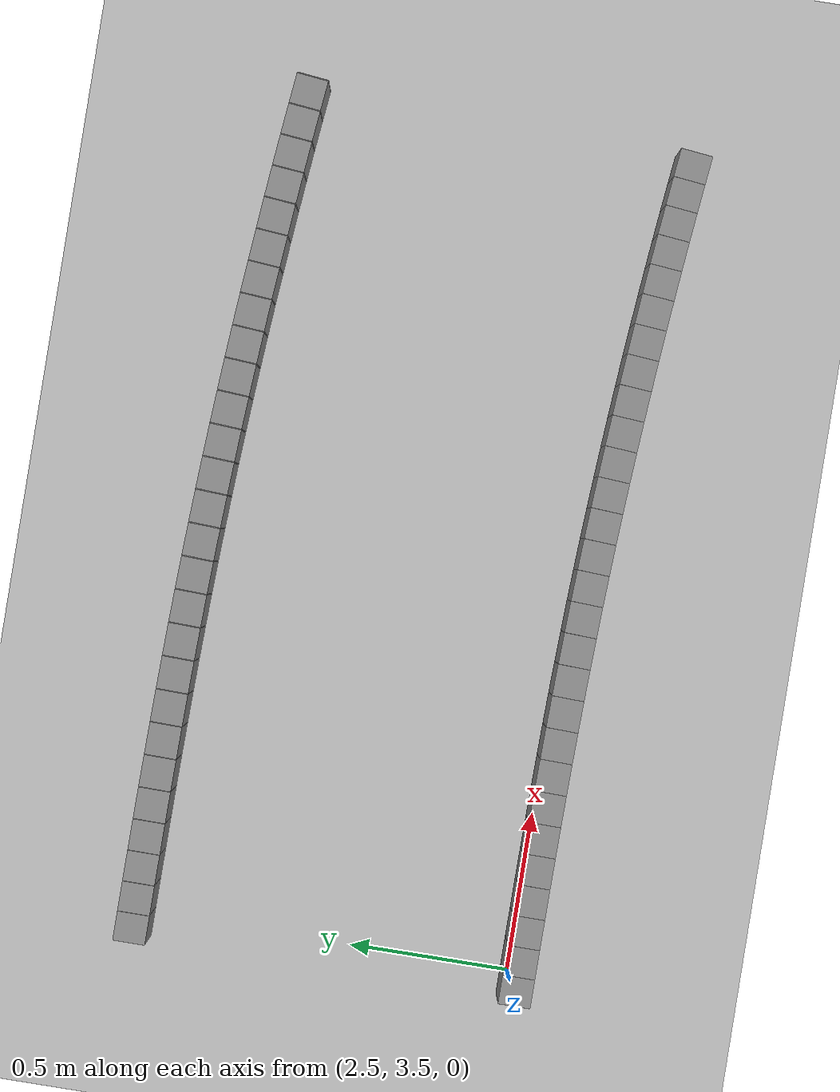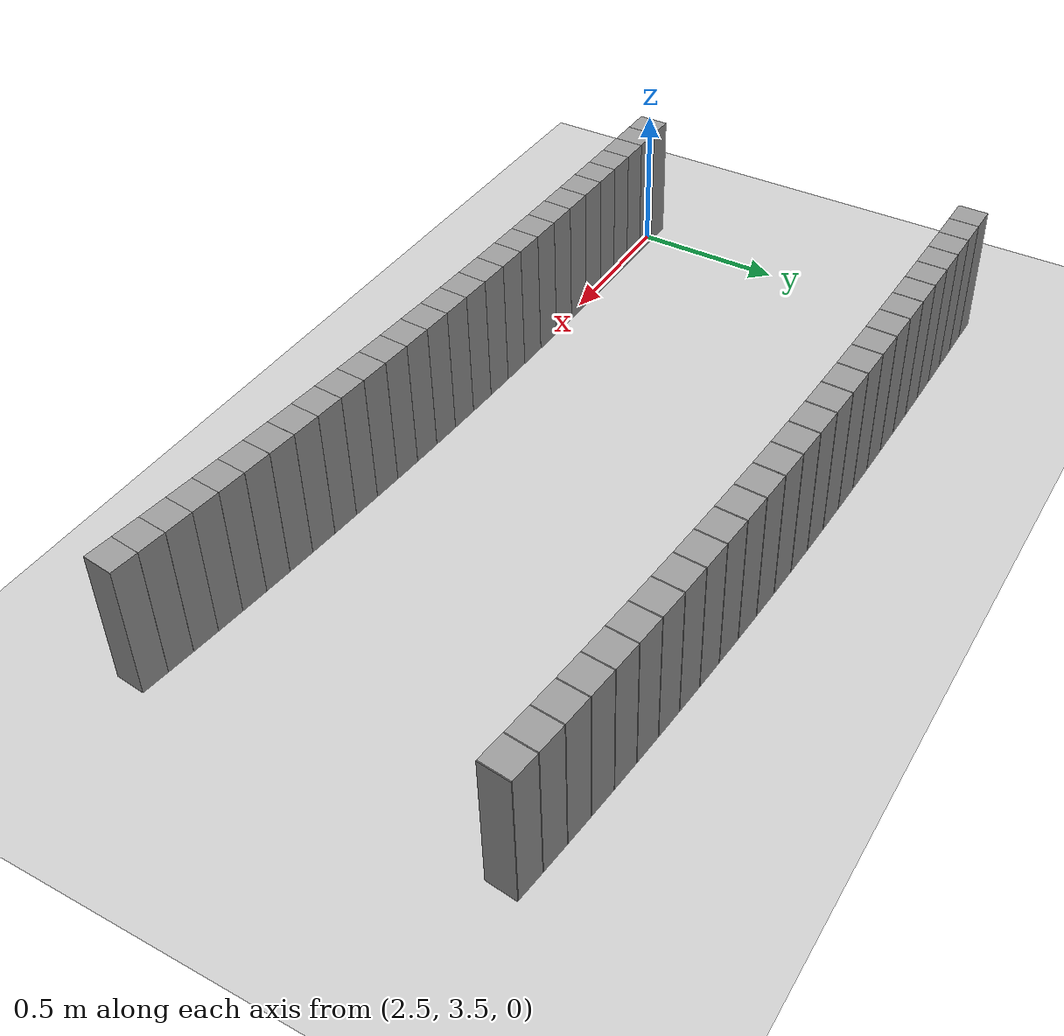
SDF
<sdf version="1.6">
 <world name="default">
  <include><uri>model://ground_plane</uri></include>
  <include><uri>model://sun</uri></include>
  <model name="wall_837_outward">
   <static>true</static>
   <link name="link">
    <collision name="collision">
     <geometry><box><size>0.08978405667883999 0.1 0.45</size></box></geometry>
    </collision>
    <visual name="visual">
     <geometry><box><size>0.08978405667883999 0.1 0.45</size></box></geometry>
     <material>
      <script><uri>file://media/materials/scripts/gazebo.material</uri><name>Gazebo/Gray</name></script>
     </material>
    </visual>
   </link>
   <pose>5.060074498899372 3.3413379117746698 0.225 0 0 3.0294439697738356</pose>
  </model>
  <model name="wall_838_outward">
   <static>true</static>
   <link name="link">
    <collision name="collision">
     <geometry><box><size>0.09111415538172778 0.1 0.45</size></box></geometry>
    </collision>
    <visual name="visual">
     <geometry><box><size>0.09111415538172778 0.1 0.45</size></box></geometry>
     <material>
      <script><uri>file://media/materials/scripts/gazebo.material</uri><name>Gazebo/Gray</name></script>
     </material>
    </visual>
   </link>
   <pose>4.9701692608893175 3.3512394400097394 0.225 0 0 3.0343237056738137</pose>
  </model>
  <model name="wall_839_outward">
   <static>true</static>
   <link name="link">
    <collision name="collision">
     <geometry><box><size>0.09233453559564336 0.1 0.45</size></box></geometry>
    </collision>
    <visual name="visual">
     <geometry><box><size>0.09233453559564336 0.1 0.45</size></box></geometry>
     <material>
      <script><uri>file://media/materials/scripts/gazebo.material</uri><name>Gazebo/Gray</name></script>
     </material>
    </visual>
   </link>
   <pose>4.878949384923868 3.3608437745766953 0.225 0 0 3.039027805335676</pose>
  </model>
  <model name="wall_840_outward">
   <static>true</static>
   <link name="link">
    <collision name="collision">
     <geometry><box><size>0.09342747025694538 0.1 0.45</size></box></geometry>
    </collision>
    <visual name="visual">
     <geometry><box><size>0.09342747025694538 0.1 0.45</size></box></geometry>
     <material>
      <script><uri>file://media/materials/scripts/gazebo.material</uri><name>Gazebo/Gray</name></script>
     </material>
    </visual>
   </link>
   <pose>4.786535166343376 3.3701415210207166 0.225 0 0 3.0435865578661128</pose>
  </model>
  <model name="wall_841_outward">
   <static>true</static>
   <link name="link">
    <collision name="collision">
     <geometry><box><size>0.09437492388730875 0.1 0.45</size></box></geometry>
    </collision>
    <visual name="visual">
     <geometry><box><size>0.09437492388730875 0.1 0.45</size></box></geometry>
     <material>
      <script><uri>file://media/materials/scripts/gazebo.material</uri><name>Gazebo/Gray</name></script>
     </material>
    </visual>
   </link>
   <pose>4.693064501812158 3.379120722409313 0.225 0 0 3.048035306997692</pose>
  </model>
  <model name="wall_842_outward">
   <static>true</static>
   <link name="link">
    <collision name="collision">
     <geometry><box><size>0.09516934785753037 0.1 0.45</size></box></geometry>
    </collision>
    <visual name="visual">
     <geometry><box><size>0.09516934785753037 0.1 0.45</size></box></geometry>
     <material>
      <script><uri>file://media/materials/scripts/gazebo.material</uri><name>Gazebo/Gray</name></script>
     </material>
    </visual>
   </link>
   <pose>4.598687802341193 3.387766715320439 0.225 0 0 3.052418599450653</pose>
  </model>
  <model name="wall_843_outward">
   <static>true</static>
   <link name="link">
    <collision name="collision">
     <geometry><box><size>0.09580797537173329 0.1 0.45</size></box></geometry>
    </collision>
    <visual name="visual">
     <geometry><box><size>0.09580797537173329 0.1 0.45</size></box></geometry>
     <material>
      <script><uri>file://media/materials/scripts/gazebo.material</uri><name>Gazebo/Gray</name></script>
     </material>
    </visual>
   </link>
   <pose>4.5035604190603395 3.3960626287252182 0.225 0 0 3.0567753603623444</pose>
  </model>
  <model name="wall_844_outward">
   <static>true</static>
   <link name="link">
    <collision name="collision">
     <geometry><box><size>0.09630136565747789 0.1 0.45</size></box></geometry>
    </collision>
    <visual name="visual">
     <geometry><box><size>0.09630136565747789 0.1 0.45</size></box></geometry>
     <material>
      <script><uri>file://media/materials/scripts/gazebo.material</uri><name>Gazebo/Gray</name></script>
     </material>
    </visual>
   </link>
   <pose>4.407833619872571 3.403989499196128 0.225 0 0 3.061161226955232</pose>
  </model>
  <model name="wall_845_outward">
   <static>true</static>
   <link name="link">
    <collision name="collision">
     <geometry><box><size>0.09666911529735084 0.1 0.45</size></box></geometry>
    </collision>
    <visual name="visual">
     <geometry><box><size>0.09666911529735084 0.1 0.45</size></box></geometry>
     <material>
      <script><uri>file://media/materials/scripts/gazebo.material</uri><name>Gazebo/Gray</name></script>
     </material>
    </visual>
   </link>
   <pose>4.311643494005121 3.411527085084715 0.225 0 0 3.065612551889493</pose>
  </model>
  <model name="wall_846_outward">
   <static>true</static>
   <link name="link">
    <collision name="collision">
     <geometry><box><size>0.09693884167619045 0.1 0.45</size></box></geometry>
    </collision>
    <visual name="visual">
     <geometry><box><size>0.09693884167619045 0.1 0.45</size></box></geometry>
     <material>
      <script><uri>file://media/materials/scripts/gazebo.material</uri><name>Gazebo/Gray</name></script>
     </material>
    </visual>
   </link>
   <pose>4.215102511405615 3.418654503946243 0.225 0 0 3.0701779723152307</pose>
  </model>
  <model name="wall_847_outward">
   <static>true</static>
   <link name="link">
    <collision name="collision">
     <geometry><box><size>0.09714953250052986 0.1 0.45</size></box></geometry>
    </collision>
    <visual name="visual">
     <geometry><box><size>0.09714953250052986 0.1 0.45</size></box></geometry>
     <material>
      <script><uri>file://media/materials/scripts/gazebo.material</uri><name>Gazebo/Gray</name></script>
     </material>
    </visual>
   </link>
   <pose>4.118289931845958 3.425351271359341 0.225 0 0 3.0748772702637783</pose>
  </model>
  <model name="wall_848_outward">
   <static>true</static>
   <link name="link">
    <collision name="collision">
     <geometry><box><size>0.09733362774750418 0.1 0.45</size></box></geometry>
    </collision>
    <visual name="visual">
     <geometry><box><size>0.09733362774750418 0.1 0.45</size></box></geometry>
     <material>
      <script><uri>file://media/materials/scripts/gazebo.material</uri><name>Gazebo/Gray</name></script>
     </material>
    </visual>
   </link>
   <pose>4.021249552595787 3.431599020983878 0.225 0 0 3.0797149582719765</pose>
  </model>
  <model name="wall_849_outward">
   <static>true</static>
   <link name="link">
    <collision name="collision">
     <geometry><box><size>0.09752387477174984 0.1 0.45</size></box></geometry>
    </collision>
    <visual name="visual">
     <geometry><box><size>0.09752387477174984 0.1 0.45</size></box></geometry>
     <material>
      <script><uri>file://media/materials/scripts/gazebo.material</uri><name>Gazebo/Gray</name></script>
     </material>
    </visual>
   </link>
   <pose>3.9239929019475763 3.4373823655325344 0.225 0 0 3.0846758455144387</pose>
  </model>
  <model name="wall_850_outward">
   <static>true</static>
   <link name="link">
    <collision name="collision">
     <geometry><box><size>0.09774078524258407 0.1 0.45</size></box></geometry>
    </collision>
    <visual name="visual">
     <geometry><box><size>0.09774078524258407 0.1 0.45</size></box></geometry>
     <material>
      <script><uri>file://media/materials/scripts/gazebo.material</uri><name>Gazebo/Gray</name></script>
     </material>
    </visual>
   </link>
   <pose>3.826505269449698 3.442690166673832 0.225 0 0 3.089719481280956</pose>
  </model>
  <model name="wall_851_outward">
   <static>true</static>
   <link name="link">
    <collision name="collision">
     <geometry><box><size>0.09799163554909575 0.1 0.45</size></box></geometry>
    </collision>
    <visual name="visual">
     <geometry><box><size>0.09799163554909575 0.1 0.45</size></box></geometry>
     <material>
      <script><uri>file://media/materials/scripts/gazebo.material</uri><name>Gazebo/Gray</name></script>
     </material>
    </visual>
   </link>
   <pose>3.728758438257376 3.447516186455678 0.225 0 0 3.0947941470186557</pose>
  </model>
  <model name="wall_852_outward">
   <static>true</static>
   <link name="link">
    <collision name="collision">
     <geometry><box><size>0.09826793805449761 0.1 0.45</size></box></geometry>
    </collision>
    <visual name="visual">
     <geometry><box><size>0.09826793805449761 0.1 0.45</size></box></geometry>
     <material>
      <script><uri>file://media/materials/scripts/gazebo.material</uri><name>Gazebo/Gray</name></script>
     </material>
    </visual>
   </link>
   <pose>3.6307251530484947 3.4518600556350822 0.225 0 0 3.0998217206120304</pose>
  </model>
  <model name="wall_853_outward">
   <static>true</static>
   <link name="link">
    <collision name="collision">
     <geometry><box><size>0.09854313273017384 0.1 0.45</size></box></geometry>
    </collision>
    <visual name="visual">
     <geometry><box><size>0.09854313273017384 0.1 0.45</size></box></geometry>
     <material>
      <script><uri>file://media/materials/scripts/gazebo.material</uri><name>Gazebo/Gray</name></script>
     </material>
    </visual>
   </link>
   <pose>3.5323959484401097 3.45572768918431 0.225 0 0 3.1047302186018637</pose>
  </model>
  <model name="wall_854_outward">
   <static>true</static>
   <link name="link">
    <collision name="collision">
     <geometry><box><size>0.09877771984804665 0.1 0.45</size></box></geometry>
    </collision>
    <visual name="visual">
     <geometry><box><size>0.09877771984804665 0.1 0.45</size></box></geometry>
     <material>
      <script><uri>file://media/materials/scripts/gazebo.material</uri><name>Gazebo/Gray</name></script>
     </material>
    </visual>
   </link>
   <pose>3.4337945283931797 3.4591314819962298 0.225 0 0 3.1094354440333603</pose>
  </model>
  <model name="wall_855_outward">
   <static>true</static>
   <link name="link">
    <collision name="collision">
     <geometry><box><size>0.09891841253824493 0.1 0.45</size></box></geometry>
    </collision>
    <visual name="visual">
     <geometry><box><size>0.09891841253824493 0.1 0.45</size></box></geometry>
     <material>
      <script><uri>file://media/materials/scripts/gazebo.material</uri><name>Gazebo/Gray</name></script>
     </material>
    </visual>
   </link>
   <pose>3.3349909977661145 3.4620902724921994 0.225 0 0 3.113872195194933</pose>
  </model>
  <model name="wall_856_outward">
   <static>true</static>
   <link name="link">
    <collision name="collision">
     <geometry><box><size>0.09891597193592082 0.1 0.45</size></box></geometry>
    </collision>
    <visual name="visual">
     <geometry><box><size>0.09891597193592082 0.1 0.45</size></box></geometry>
     <material>
      <script><uri>file://media/materials/scripts/gazebo.material</uri><name>Gazebo/Gray</name></script>
     </material>
    </visual>
   </link>
   <pose>3.236106583728657 3.4646284059674914 0.225 0 0 3.117989072502176</pose>
  </model>
  <model name="wall_857_outward">
   <static>true</static>
   <link name="link">
    <collision name="collision">
     <geometry><box><size>0.09871757157421233 0.1 0.45</size></box></geometry>
    </collision>
    <visual name="visual">
     <geometry><box><size>0.09871757157421233 0.1 0.45</size></box></geometry>
     <material>
      <script><uri>file://media/materials/scripts/gazebo.material</uri><name>Gazebo/Gray</name></script>
     </material>
    </visual>
   </link>
   <pose>3.1373133220054807 3.4667758698573112 0.225 0 0 3.121732944288504</pose>
  </model>
  <model name="wall_858_outward">
   <static>true</static>
   <link name="link">
    <collision name="collision">
     <geometry><box><size>0.09827706636156781 0.1 0.45</size></box></geometry>
    </collision>
    <visual name="visual">
     <geometry><box><size>0.09827706636156781 0.1 0.45</size></box></geometry>
     <material>
      <script><uri>file://media/materials/scripts/gazebo.material</uri><name>Gazebo/Gray</name></script>
     </material>
    </visual>
   </link>
   <pose>3.0388324278529755 3.468566960261188 0.225 0 0 3.12508950505491</pose>
  </model>
  <model name="wall_859_outward">
   <static>true</static>
   <link name="link">
    <collision name="collision">
     <geometry><box><size>0.09756593634913963 0.1 0.45</size></box></geometry>
    </collision>
    <visual name="visual">
     <geometry><box><size>0.09756593634913963 0.1 0.45</size></box></geometry>
     <material>
      <script><uri>file://media/materials/scripts/gazebo.material</uri><name>Gazebo/Gray</name></script>
     </material>
    </visual>
   </link>
   <pose>2.9409220905371116 3.470038438574471 0.225 0 0 3.1280511487356515</pose>
  </model>
  <model name="wall_860_outward">
   <static>true</static>
   <link name="link">
    <collision name="collision">
     <geometry><box><size>0.09657416885190022 0.1 0.45</size></box></geometry>
    </collision>
    <visual name="visual">
     <geometry><box><size>0.09657416885190022 0.1 0.45</size></box></geometry>
     <material>
      <script><uri>file://media/materials/scripts/gazebo.material</uri><name>Gazebo/Gray</name></script>
     </material>
    </visual>
   </link>
   <pose>2.8438594123484906 3.47122837723097 0.225 0 0 3.1306295843653142</pose>
  </model>
  <model name="wall_861_outward">
   <static>true</static>
   <link name="link">
    <collision name="collision">
     <geometry><box><size>0.09530748524478223 0.1 0.45</size></box></geometry>
    </collision>
    <visual name="visual">
     <geometry><box><size>0.09530748524478223 0.1 0.45</size></box></geometry>
     <material>
      <script><uri>file://media/materials/scripts/gazebo.material</uri><name>Gazebo/Gray</name></script>
     </material>
    </visual>
   </link>
   <pose>2.7479233169367214 3.4721753510569595 0.225 0 0 3.1328291210042822</pose>
  </model>
  <model name="wall_862_outward">
   <static>true</static>
   <link name="link">
    <collision name="collision">
     <geometry><box><size>0.09378469481318343 0.1 0.45</size></box></geometry>
    </collision>
    <visual name="visual">
     <geometry><box><size>0.09378469481318343 0.1 0.45</size></box></geometry>
     <material>
      <script><uri>file://media/materials/scripts/gazebo.material</uri><name>Gazebo/Gray</name></script>
     </material>
    </visual>
   </link>
   <pose>2.653380175797782 3.4729169126044077 0.225 0 0 3.1346841842685453</pose>
  </model>
  <model name="wall_863_outward">
   <static>true</static>
   <link name="link">
    <collision name="collision">
     <geometry><box><size>0.09204683593581975 0.1 0.45</size></box></geometry>
    </collision>
    <visual name="visual">
     <geometry><box><size>0.09204683593581975 0.1 0.45</size></box></geometry>
     <material>
      <script><uri>file://media/materials/scripts/gazebo.material</uri><name>Gazebo/Gray</name></script>
     </material>
    </visual>
   </link>
   <pose>2.5604661916868494 3.473487760946347 0.225 0 0 3.1362280420395785</pose>
  </model>
  <model name="wall_864_outward">
   <static>true</static>
   <link name="link">
    <collision name="collision">
     <geometry><box><size>0.09014853929147759 0.1 0.45</size></box></geometry>
    </collision>
    <visual name="visual">
     <geometry><box><size>0.09014853929147759 0.1 0.45</size></box></geometry>
     <material>
      <script><uri>file://media/materials/scripts/gazebo.material</uri><name>Gazebo/Gray</name></script>
     </material>
    </visual>
   </link>
   <pose>2.469369544233346 3.4739192315484453 0.225 0 0 3.137497755458029</pose>
  </model>
  <model name="wall_1267_inward">
   <static>true</static>
   <link name="link">
    <collision name="collision">
     <geometry><box><size>0.002927838635106336 0.1 0.45</size></box></geometry>
    </collision>
    <visual name="visual">
     <geometry><box><size>0.002927838635106336 0.1 0.45</size></box></geometry>
     <material>
      <script><uri>file://media/materials/scripts/gazebo.material</uri><name>Gazebo/Gray</name></script>
     </material>
    </visual>
   </link>
   <pose>5.146851131988015 4.539147572530892 0.225 0 0 3.031883837723984</pose>
  </model>
  <model name="wall_1268_inward">
   <static>true</static>
   <link name="link">
    <collision name="collision">
     <geometry><box><size>0.0939893115577353 0.1 0.45</size></box></geometry>
    </collision>
    <visual name="visual">
     <geometry><box><size>0.0939893115577353 0.1 0.45</size></box></geometry>
     <material>
      <script><uri>file://media/materials/scripts/gazebo.material</uri><name>Gazebo/Gray</name></script>
     </material>
    </visual>
   </link>
   <pose>5.0986714737756795 4.544339260635573 0.225 0 0 3.0343237056738173</pose>
  </model>
  <model name="wall_1269_inward">
   <static>true</static>
   <link name="link">
    <collision name="collision">
     <geometry><box><size>0.0028224571947404234 0.1 0.45</size></box></geometry>
    </collision>
    <visual name="visual">
     <geometry><box><size>0.0028224571947404234 0.1 0.45</size></box></geometry>
     <material>
      <script><uri>file://media/materials/scripts/gazebo.material</uri><name>Gazebo/Gray</name></script>
     </material>
    </visual>
   </link>
   <pose>5.050543465198539 4.549518456109002 0.225 0 0 3.0366757555045947</pose>
  </model>
  <model name="wall_1270_inward">
   <static>true</static>
   <link name="link">
    <collision name="collision">
     <geometry><box><size>0.09511339622413767 0.1 0.45</size></box></geometry>
    </collision>
    <visual name="visual">
     <geometry><box><size>0.09511339622413767 0.1 0.45</size></box></geometry>
     <material>
      <script><uri>file://media/materials/scripts/gazebo.material</uri><name>Gazebo/Gray</name></script>
     </material>
    </visual>
   </link>
   <pose>5.001833216741218 4.554535344603568 0.225 0 0 3.0390278053356723</pose>
  </model>
  <model name="wall_1271_inward">
   <static>true</static>
   <link name="link">
    <collision name="collision">
     <geometry><box><size>0.0027352491497396126 0.1 0.45</size></box></geometry>
    </collision>
    <visual name="visual">
     <geometry><box><size>0.0027352491497396126 0.1 0.45</size></box></geometry>
     <material>
      <script><uri>file://media/materials/scripts/gazebo.material</uri><name>Gazebo/Gray</name></script>
     </material>
    </visual>
   </link>
   <pose>4.95316568379855 4.559541365951166 0.225 0 0 3.0413071816010766</pose>
  </model>
  <model name="wall_1272_inward">
   <static>true</static>
   <link name="link">
    <collision name="collision">
     <geometry><box><size>0.09612972532529258 0.1 0.45</size></box></geometry>
    </collision>
    <visual name="visual">
     <geometry><box><size>0.09612972532529258 0.1 0.45</size></box></geometry>
     <material>
      <script><uri>file://media/materials/scripts/gazebo.material</uri><name>Gazebo/Gray</name></script>
     </material>
    </visual>
   </link>
   <pose>4.903970719494335 4.564381401081836 0.225 0 0 3.0435865578661074</pose>
  </model>
  <model name="wall_1273_inward">
   <static>true</static>
   <link name="link">
    <collision name="collision">
     <geometry><box><size>0.0026692472777792853 0.1 0.45</size></box></geometry>
    </collision>
    <visual name="visual">
     <geometry><box><size>0.0026692472777792853 0.1 0.45</size></box></geometry>
     <material>
      <script><uri>file://media/materials/scripts/gazebo.material</uri><name>Gazebo/Gray</name></script>
     </material>
    </visual>
   </link>
   <pose>4.854808001999377 4.569212150295995 0.225 0 0 3.045810932431868</pose>
  </model>
  <model name="wall_1274_inward">
   <static>true</static>
   <link name="link">
    <collision name="collision">
     <geometry><box><size>0.09702454066919163 0.1 0.45</size></box></geometry>
    </collision>
    <visual name="visual">
     <geometry><box><size>0.09702454066919163 0.1 0.45</size></box></geometry>
     <material>
      <script><uri>file://media/materials/scripts/gazebo.material</uri><name>Gazebo/Gray</name></script>
     </material>
    </visual>
   </link>
   <pose>4.8051793839341075 4.57387184850344 0.225 0 0 3.0480353069976953</pose>
  </model>
  <model name="wall_1275_inward">
   <static>true</static>
   <link name="link">
    <collision name="collision">
     <geometry><box><size>0.0026299733663413425 0.1 0.45</size></box></geometry>
    </collision>
    <visual name="visual">
     <geometry><box><size>0.0026299733663413425 0.1 0.45</size></box></geometry>
     <material>
      <script><uri>file://media/materials/scripts/gazebo.material</uri><name>Gazebo/Gray</name></script>
     </material>
    </visual>
   </link>
   <pose>4.755569770227066 4.578523887124847 0.225 0 0 3.0502269532241204</pose>
  </model>
  <model name="wall_1276_inward">
   <static>true</static>
   <link name="link">
    <collision name="collision">
     <geometry><box><size>0.09779136803986449 0.1 0.45</size></box></geometry>
    </collision>
    <visual name="visual">
     <geometry><box><size>0.09779136803986449 0.1 0.45</size></box></geometry>
     <material>
      <script><uri>file://media/materials/scripts/gazebo.material</uri><name>Gazebo/Gray</name></script>
     </material>
    </visual>
   </link>
   <pose>4.705558864994947 4.58299831462791 0.225 0 0 3.052418599450651</pose>
  </model>
  <model name="wall_1277_inward">
   <static>true</static>
   <link name="link">
    <collision name="collision">
     <geometry><box><size>0.0026140544795836417 0.1 0.45</size></box></geometry>
    </collision>
    <visual name="visual">
     <geometry><box><size>0.0026140544795836417 0.1 0.45</size></box></geometry>
     <material>
      <script><uri>file://media/materials/scripts/gazebo.material</uri><name>Gazebo/Gray</name></script>
     </material>
    </visual>
   </link>
   <pose>4.65555537730591 4.587466326881071 0.225 0 0 3.0545969799066697</pose>
  </model>
  <model name="wall_1278_inward">
   <static>true</static>
   <link name="link">
    <collision name="collision">
     <geometry><box><size>0.09843076779970991 0.1 0.45</size></box></geometry>
    </collision>
    <visual name="visual">
     <geometry><box><size>0.09843076779970991 0.1 0.45</size></box></geometry>
     <material>
      <script><uri>file://media/materials/scripts/gazebo.material</uri><name>Gazebo/Gray</name></script>
     </material>
    </visual>
   </link>
   <pose>4.605214829975608 4.591749201686765 0.225 0 0 3.056775360362343</pose>
  </model>
  <model name="wall_1279_inward">
   <static>true</static>
   <link name="link">
    <collision name="collision">
     <geometry><box><size>0.0026315178465916305 0.1 0.45</size></box></geometry>
    </collision>
    <visual name="visual">
     <geometry><box><size>0.0026315178465916305 0.1 0.45</size></box></geometry>
     <material>
      <script><uri>file://media/materials/scripts/gazebo.material</uri><name>Gazebo/Gray</name></script>
     </material>
    </visual>
   </link>
   <pose>4.554865096774804 4.596027104235301 0.225 0 0 3.0589682936587628</pose>
  </model>
  <model name="wall_1280_inward">
   <static>true</static>
   <link name="link">
    <collision name="collision">
     <geometry><box><size>0.09895252742977917 0.1 0.45</size></box></geometry>
    </collision>
    <visual name="visual">
     <geometry><box><size>0.09895252742977917 0.1 0.45</size></box></geometry>
     <material>
      <script><uri>file://media/materials/scripts/gazebo.material</uri><name>Gazebo/Gray</name></script>
     </material>
    </visual>
   </link>
   <pose>4.5042375128051635 4.600110851536203 0.225 0 0 3.0611612269552344</pose>
  </model>
  <model name="wall_1281_inward">
   <static>true</static>
   <link name="link">
    <collision name="collision">
     <geometry><box><size>0.002670792755560371 0.1 0.45</size></box></geometry>
    </collision>
    <visual name="visual">
     <geometry><box><size>0.002670792755560371 0.1 0.45</size></box></geometry>
     <material>
      <script><uri>file://media/materials/scripts/gazebo.material</uri><name>Gazebo/Gray</name></script>
     </material>
    </visual>
   </link>
   <pose>4.4535898843896184 4.604190338019741 0.225 0 0 3.0633868894223277</pose>
  </model>
  <model name="wall_1282_inward">
   <static>true</static>
   <link name="link">
    <collision name="collision">
     <geometry><box><size>0.0993741434892348 0.1 0.45</size></box></geometry>
    </collision>
    <visual name="visual">
     <geometry><box><size>0.0993741434892348 0.1 0.45</size></box></geometry>
     <material>
      <script><uri>file://media/materials/scripts/gazebo.material</uri><name>Gazebo/Gray</name></script>
     </material>
    </visual>
   </link>
   <pose>4.402714850071664 4.608066264717836 0.225 0 0 3.0656125518894948</pose>
  </model>
  <model name="wall_1283_inward">
   <static>true</static>
   <link name="link">
    <collision name="collision">
     <geometry><box><size>0.0027392498765071278 0.1 0.45</size></box></geometry>
    </collision>
    <visual name="visual">
     <geometry><box><size>0.0027392498765071278 0.1 0.45</size></box></geometry>
     <material>
      <script><uri>file://media/materials/scripts/gazebo.material</uri><name>Gazebo/Gray</name></script>
     </material>
    </visual>
   </link>
   <pose>4.351805223280168 4.611938708585855 0.225 0 0 3.0678952621024154</pose>
  </model>
  <model name="wall_1284_inward">
   <static>true</static>
   <link name="link">
    <collision name="collision">
     <geometry><box><size>0.09971826216186491 0.1 0.45</size></box></geometry>
    </collision>
    <visual name="visual">
     <geometry><box><size>0.09971826216186491 0.1 0.45</size></box></geometry>
     <material>
      <script><uri>file://media/materials/scripts/gazebo.material</uri><name>Gazebo/Gray</name></script>
     </material>
    </visual>
   </link>
   <pose>4.300707273174533 4.615597203145232 0.225 0 0 3.0701779723152294</pose>
  </model>
  <model name="wall_1285_inward">
   <static>true</static>
   <link name="link">
    <collision name="collision">
     <geometry><box><size>0.0028195761747167544 0.1 0.45</size></box></geometry>
    </collision>
    <visual name="visual">
     <geometry><box><size>0.0028195761747167544 0.1 0.45</size></box></geometry>
     <material>
      <script><uri>file://media/materials/scripts/gazebo.material</uri><name>Gazebo/Gray</name></script>
     </material>
    </visual>
   </link>
   <pose>4.249568803170451 4.619252140936975 0.225 0 0 3.0725276212893426</pose>
  </model>
  <model name="wall_1286_inward">
   <static>true</static>
   <link name="link">
    <collision name="collision">
     <geometry><box><size>0.10001063371249168 0.1 0.45</size></box></geometry>
    </collision>
    <visual name="visual">
     <geometry><box><size>0.10001063371249168 0.1 0.45</size></box></geometry>
     <material>
      <script><uri>file://media/materials/scripts/gazebo.material</uri><name>Gazebo/Gray</name></script>
     </material>
    </visual>
   </link>
   <pose>4.198268303340974 4.622683080226008 0.225 0 0 3.074877270263776</pose>
  </model>
  <model name="wall_1287_inward">
   <static>true</static>
   <link name="link">
    <collision name="collision">
     <geometry><box><size>0.0029026099744841384 0.1 0.45</size></box></geometry>
    </collision>
    <visual name="visual">
     <geometry><box><size>0.0029026099744841384 0.1 0.45</size></box></geometry>
     <material>
      <script><uri>file://media/materials/scripts/gazebo.material</uri><name>Gazebo/Gray</name></script>
     </material>
    </visual>
   </link>
   <pose>4.146925924465069 4.626109979450758 0.225 0 0 3.077296114268053</pose>
  </model>
  <model name="wall_1288_inward">
   <static>true</static>
   <link name="link">
    <collision name="collision">
     <geometry><box><size>0.10027320620530396 0.1 0.45</size></box></geometry>
    </collision>
    <visual name="visual">
     <geometry><box><size>0.10027320620530396 0.1 0.45</size></box></geometry>
     <material>
      <script><uri>file://media/materials/scripts/gazebo.material</uri><name>Gazebo/Gray</name></script>
     </material>
    </visual>
   </link>
   <pose>4.095436967346293 4.629303587157919 0.225 0 0 3.0797149582719774</pose>
  </model>
  <model name="wall_1289_inward">
   <static>true</static>
   <link name="link">
    <collision name="collision">
     <geometry><box><size>0.002976529293243649 0.1 0.45</size></box></geometry>
    </collision>
    <visual name="visual">
     <geometry><box><size>0.002976529293243649 0.1 0.45</size></box></geometry>
     <material>
      <script><uri>file://media/materials/scripts/gazebo.material</uri><name>Gazebo/Gray</name></script>
     </material>
    </visual>
   </link>
   <pose>4.043910676273434 4.632492292117547 0.225 0 0 3.082195401893085</pose>
  </model>
  <model name="wall_1290_inward">
   <static>true</static>
   <link name="link">
    <collision name="collision">
     <geometry><box><size>0.10052523793422025 0.1 0.45</size></box></geometry>
    </collision>
    <visual name="visual">
     <geometry><box><size>0.10052523793422025 0.1 0.45</size></box></geometry>
     <material>
      <script><uri>file://media/materials/scripts/gazebo.material</uri><name>Gazebo/Gray</name></script>
     </material>
    </visual>
   </link>
   <pose>3.992243808691823 4.635439882466782 0.225 0 0 3.0846758455144405</pose>
  </model>
  <model name="wall_1291_inward">
   <static>true</static>
   <link name="link">
    <collision name="collision">
     <geometry><box><size>0.0030261782523771257 0.1 0.45</size></box></geometry>
    </collision>
    <visual name="visual">
     <geometry><box><size>0.0030261782523771257 0.1 0.45</size></box></geometry>
     <material>
      <script><uri>file://media/materials/scripts/gazebo.material</uri><name>Gazebo/Gray</name></script>
     </material>
    </visual>
   </link>
   <pose>3.940551730002123 4.638381389842948 0.225 0 0 3.0871976633978737</pose>
  </model>
  <model name="wall_1292_inward">
   <static>true</static>
   <link name="link">
    <collision name="collision">
     <geometry><box><size>0.100776282168453 0.1 0.45</size></box></geometry>
    </collision>
    <visual name="visual">
     <geometry><box><size>0.100776282168453 0.1 0.45</size></box></geometry>
     <material>
      <script><uri>file://media/materials/scripts/gazebo.material</uri><name>Gazebo/Gray</name></script>
     </material>
    </visual>
   </link>
   <pose>3.888720515375189 4.641076274402094 0.225 0 0 3.0897194812809565</pose>
  </model>
  <model name="wall_1293_inward">
   <static>true</static>
   <link name="link">
    <collision name="collision">
     <geometry><box><size>0.0030447961755198302 0.1 0.45</size></box></geometry>
    </collision>
    <visual name="visual">
     <geometry><box><size>0.0030447961755198302 0.1 0.45</size></box></geometry>
     <material>
      <script><uri>file://media/materials/scripts/gazebo.material</uri><name>Gazebo/Gray</name></script>
     </material>
    </visual>
   </link>
   <pose>3.8368796062649615 4.643763973396224 0.225 0 0 3.092256814149761</pose>
  </model>
  <model name="wall_1294_inward">
   <static>true</static>
   <link name="link">
    <collision name="collision">
     <geometry><box><size>0.10102231379268013 0.1 0.45</size></box></geometry>
    </collision>
    <visual name="visual">
     <geometry><box><size>0.10102231379268013 0.1 0.45</size></box></geometry>
     <material>
      <script><uri>file://media/materials/scripts/gazebo.material</uri><name>Gazebo/Gray</name></script>
     </material>
    </visual>
   </link>
   <pose>3.784903205836263 4.646202035676986 0.225 0 0 3.094794147018653</pose>
  </model>
  <model name="wall_1295_inward">
   <static>true</static>
   <link name="link">
    <collision name="collision">
     <geometry><box><size>0.003016540979042775 0.1 0.45</size></box></geometry>
    </collision>
    <visual name="visual">
     <geometry><box><size>0.003016540979042775 0.1 0.45</size></box></geometry>
     <material>
      <script><uri>file://media/materials/scripts/gazebo.material</uri><name>Gazebo/Gray</name></script>
     </material>
    </visual>
   </link>
   <pose>3.7329405593244336 4.648631791142171 0.225 0 0 3.0973079338151788</pose>
  </model>
  <model name="wall_1296_inward">
   <static>true</static>
   <link name="link">
    <collision name="collision">
     <geometry><box><size>0.10124876566287273 0.1 0.45</size></box></geometry>
    </collision>
    <visual name="visual">
     <geometry><box><size>0.10124876566287273 0.1 0.45</size></box></geometry>
     <material>
      <script><uri>file://media/materials/scripts/gazebo.material</uri><name>Gazebo/Gray</name></script>
     </material>
    </visual>
   </link>
   <pose>3.6808535432886282 4.650812575466858 0.225 0 0 3.099821720612033</pose>
  </model>
  <model name="wall_1297_inward">
   <static>true</static>
   <link name="link">
    <collision name="collision">
     <geometry><box><size>0.0029450958373437135 0.1 0.45</size></box></geometry>
    </collision>
    <visual name="visual">
     <geometry><box><size>0.0029450958373437135 0.1 0.45</size></box></geometry>
     <material>
      <script><uri>file://media/materials/scripts/gazebo.material</uri><name>Gazebo/Gray</name></script>
     </material>
    </visual>
   </link>
   <pose>3.6288019090901678 4.652984469071681 0.225 0 0 3.1022759696070206</pose>
  </model>
  <model name="wall_1298_inward">
   <static>true</static>
   <link name="link">
    <collision name="collision">
     <geometry><box><size>0.10142725531739799 0.1 0.45</size></box></geometry>
    </collision>
    <visual name="visual">
     <geometry><box><size>0.10142725531739799 0.1 0.45</size></box></geometry>
     <material>
      <script><uri>file://media/materials/scripts/gazebo.material</uri><name>Gazebo/Gray</name></script>
     </material>
    </visual>
   </link>
   <pose>3.5766513234286212 4.654911354314189 0.225 0 0 3.104730218601861</pose>
  </model>
  <model name="wall_1299_inward">
   <static>true</static>
   <link name="link">
    <collision name="collision">
     <geometry><box><size>0.002823132654657403 0.1 0.45</size></box></geometry>
    </collision>
    <visual name="visual">
     <geometry><box><size>0.002823132654657403 0.1 0.45</size></box></geometry>
     <material>
      <script><uri>file://media/materials/scripts/gazebo.material</uri><name>Gazebo/Gray</name></script>
     </material>
    </visual>
   </link>
   <pose>3.524561421824927 4.656829062004986 0.225 0 0 3.1070828313176553</pose>
  </model>
  <model name="wall_1300_inward">
   <static>true</static>
   <link name="link">
    <collision name="collision">
     <geometry><box><size>0.10152031761361842 0.1 0.45</size></box></geometry>
    </collision>
    <visual name="visual">
     <geometry><box><size>0.10152031761361842 0.1 0.45</size></box></geometry>
     <material>
      <script><uri>file://media/materials/scripts/gazebo.material</uri><name>Gazebo/Gray</name></script>
     </material>
    </visual>
   </link>
   <pose>3.4724167800706165 4.658509788994129 0.225 0 0 3.109435444033359</pose>
  </model>
  <model name="wall_1301_inward">
   <static>true</static>
   <link name="link">
    <collision name="collision">
     <geometry><box><size>0.0026620485135363213 0.1 0.45</size></box></geometry>
    </collision>
    <visual name="visual">
     <geometry><box><size>0.0026620485135363213 0.1 0.45</size></box></geometry>
     <material>
      <script><uri>file://media/materials/scripts/gazebo.material</uri><name>Gazebo/Gray</name></script>
     </material>
    </visual>
   </link>
   <pose>3.420352436409914 4.660181656109999 0.225 0 0 3.1116538196142116</pose>
  </model>
  <model name="wall_1302_inward">
   <static>true</static>
   <link name="link">
    <collision name="collision">
     <geometry><box><size>0.10148450500673442 0.1 0.45</size></box></geometry>
    </collision>
    <visual name="visual">
     <geometry><box><size>0.10148450500673442 0.1 0.45</size></box></geometry>
     <material>
      <script><uri>file://media/materials/scripts/gazebo.material</uri><name>Gazebo/Gray</name></script>
     </material>
    </visual>
   </link>
   <pose>3.3682992506554283 4.661627917833798 0.225 0 0 3.113872195194935</pose>
  </model>
  <model name="wall_1303_inward">
   <static>true</static>
   <link name="link">
    <collision name="collision">
     <geometry><box><size>0.0024701246399552487 0.1 0.45</size></box></geometry>
    </collision>
    <visual name="visual">
     <geometry><box><size>0.0024701246399552487 0.1 0.45</size></box></geometry>
     <material>
      <script><uri>file://media/materials/scripts/gazebo.material</uri><name>Gazebo/Gray</name></script>
     </material>
    </visual>
   </link>
   <pose>3.316341837007482 4.663066026911242 0.225 0 0 3.11593063384856</pose>
  </model>
  <model name="wall_1304_inward">
   <static>true</static>
   <link name="link">
    <collision name="collision">
     <geometry><box><size>0.1012741997203977 0.1 0.45</size></box></geometry>
    </collision>
    <visual name="visual">
     <geometry><box><size>0.1012741997203977 0.1 0.45</size></box></geometry>
     <material>
      <script><uri>file://media/materials/scripts/gazebo.material</uri><name>Gazebo/Gray</name></script>
     </material>
    </visual>
   </link>
   <pose>3.264484186518042 4.664292823540358 0.225 0 0 3.1179890725021773</pose>
  </model>
  <model name="wall_1305_inward">
   <static>true</static>
   <link name="link">
    <collision name="collision">
     <geometry><box><size>0.0022463217598899196 0.1 0.45</size></box></geometry>
    </collision>
    <visual name="visual">
     <geometry><box><size>0.0022463217598899196 0.1 0.45</size></box></geometry>
     <material>
      <script><uri>file://media/materials/scripts/gazebo.material</uri><name>Gazebo/Gray</name></script>
     </material>
    </visual>
   </link>
   <pose>3.2127382960264534 4.665512335666971 0.225 0 0 3.1198610083953695</pose>
  </model>
  <model name="wall_1306_inward">
   <static>true</static>
   <link name="link">
    <collision name="collision">
     <geometry><box><size>0.10084770359723065 0.1 0.45</size></box></geometry>
    </collision>
    <visual name="visual">
     <geometry><box><size>0.10084770359723065 0.1 0.45</size></box></geometry>
     <material>
      <script><uri>file://media/materials/scripts/gazebo.material</uri><name>Gazebo/Gray</name></script>
     </material>
    </visual>
   </link>
   <pose>3.1612014920117053 4.66653807909254 0.225 0 0 3.1217329442885045</pose>
  </model>
  <model name="wall_1307_inward">
   <static>true</static>
   <link name="link">
    <collision name="collision">
     <geometry><box><size>0.002013935514423918 0.1 0.45</size></box></geometry>
    </collision>
    <visual name="visual">
     <geometry><box><size>0.002013935514423918 0.1 0.45</size></box></geometry>
     <material>
      <script><uri>file://media/materials/scripts/gazebo.material</uri><name>Gazebo/Gray</name></script>
     </material>
    </visual>
   </link>
   <pose>3.109780782344916 4.667557723409555 0.225 0 0 3.123411224671528</pose>
  </model>
  <model name="wall_1308_inward">
   <static>true</static>
   <link name="link">
    <collision name="collision">
     <geometry><box><size>0.10017252929057346 0.1 0.45</size></box></geometry>
    </collision>
    <visual name="visual">
     <geometry><box><size>0.10017252929057346 0.1 0.45</size></box></geometry>
     <material>
      <script><uri>file://media/materials/scripts/gazebo.material</uri><name>Gazebo/Gray</name></script>
     </material>
    </visual>
   </link>
   <pose>3.0586945368119034 4.668402574058682 0.225 0 0 3.1250895050549063</pose>
  </model>
  <model name="wall_1309_inward">
   <static>true</static>
   <link name="link">
    <collision name="collision">
     <geometry><box><size>0.0017769855590083151 0.1 0.45</size></box></geometry>
    </collision>
    <visual name="visual">
     <geometry><box><size>0.0017769855590083151 0.1 0.45</size></box></geometry>
     <material>
      <script><uri>file://media/materials/scripts/gazebo.material</uri><name>Gazebo/Gray</name></script>
     </material>
    </visual>
   </link>
   <pose>3.007726700078689 4.669242464330554 0.225 0 0 3.1265703268950666</pose>
  </model>
  <model name="wall_1310_inward">
   <static>true</static>
   <link name="link">
    <collision name="collision">
     <geometry><box><size>0.0992279612202163 0.1 0.45</size></box></geometry>
    </collision>
    <visual name="visual">
     <geometry><box><size>0.0992279612202163 0.1 0.45</size></box></geometry>
     <material>
      <script><uri>file://media/materials/scripts/gazebo.material</uri><name>Gazebo/Gray</name></script>
     </material>
    </visual>
   </link>
   <pose>2.9572288757870964 4.669927638483744 0.225 0 0 3.128051148735652</pose>
  </model>
  <model name="wall_1311_inward">
   <static>true</static>
   <link name="link">
    <collision name="collision">
     <geometry><box><size>0.0015470609492402349 0.1 0.45</size></box></geometry>
    </collision>
    <visual name="visual">
     <geometry><box><size>0.0015470609492402349 0.1 0.45</size></box></geometry>
     <material>
      <script><uri>file://media/materials/scripts/gazebo.material</uri><name>Gazebo/Gray</name></script>
     </material>
    </visual>
   </link>
   <pose>2.9068459716089627 4.670608943190425 0.225 0 0 3.129340366550879</pose>
  </model>
  <model name="wall_1312_inward">
   <static>true</static>
   <link name="link">
    <collision name="collision">
     <geometry><box><size>0.09800756122720469 0.1 0.45</size></box></geometry>
    </collision>
    <visual name="visual">
     <geometry><box><size>0.09800756122720469 0.1 0.45</size></box></geometry>
     <material>
      <script><uri>file://media/materials/scripts/gazebo.material</uri><name>Gazebo/Gray</name></script>
     </material>
    </visual>
   </link>
   <pose>2.8570716634060718 4.671155641548353 0.225 0 0 3.1306295843653142</pose>
  </model>
  <model name="wall_1313_inward">
   <static>true</static>
   <link name="link">
    <collision name="collision">
     <geometry><box><size>0.0013197217173498768 0.1 0.45</size></box></geometry>
    </collision>
    <visual name="visual">
     <geometry><box><size>0.0013197217173498768 0.1 0.45</size></box></geometry>
     <material>
      <script><uri>file://media/materials/scripts/gazebo.material</uri><name>Gazebo/Gray</name></script>
     </material>
    </visual>
   </link>
   <pose>2.8074109988561453 4.671699370926674 0.225 0 0 3.1317293526846997</pose>
  </model>
  <model name="wall_1314_inward">
   <static>true</static>
   <link name="link">
    <collision name="collision">
     <geometry><box><size>0.09652386564146982 0.1 0.45</size></box></geometry>
    </collision>
    <visual name="visual">
     <geometry><box><size>0.09652386564146982 0.1 0.45</size></box></geometry>
     <material>
      <script><uri>file://media/materials/scripts/gazebo.material</uri><name>Gazebo/Gray</name></script>
     </material>
    </visual>
   </link>
   <pose>2.758491090508035 4.672128818834624 0.225 0 0 3.132829121004284</pose>
  </model>
  <model name="wall_1315_inward">
   <static>true</static>
   <link name="link">
    <collision name="collision">
     <geometry><box><size>0.0011130377989628732 0.1 0.45</size></box></geometry>
    </collision>
    <visual name="visual">
     <geometry><box><size>0.0011130377989628732 0.1 0.45</size></box></geometry>
     <material>
      <script><uri>file://media/materials/scripts/gazebo.material</uri><name>Gazebo/Gray</name></script>
     </material>
    </visual>
   </link>
   <pose>2.709674509108047 4.672556119279896 0.225 0 0 3.13375665263616</pose>
  </model>
  <model name="wall_1316_inward">
   <static>true</static>
   <link name="link">
    <collision name="collision">
     <geometry><box><size>0.09480437137514795 0.1 0.45</size></box></geometry>
    </collision>
    <visual name="visual">
     <geometry><box><size>0.09480437137514795 0.1 0.45</size></box></geometry>
     <material>
      <script><uri>file://media/materials/scripts/gazebo.material</uri><name>Gazebo/Gray</name></script>
     </material>
    </visual>
   </link>
   <pose>2.6617169527831797 4.6728879540585755 0.225 0 0 3.1346841842685453</pose>
  </model>
  <model name="wall_1317_inward">
   <static>true</static>
   <link name="link">
    <collision name="collision">
     <geometry><box><size>0.0009263145706265544 0.1 0.45</size></box></geometry>
    </collision>
    <visual name="visual">
     <geometry><box><size>0.0009263145706265544 0.1 0.45</size></box></geometry>
     <material>
      <script><uri>file://media/materials/scripts/gazebo.material</uri><name>Gazebo/Gray</name></script>
     </material>
    </visual>
   </link>
   <pose>2.6138527497071875 4.673218270164826 0.225 0 0 3.1354561131541634</pose>
  </model>
  <model name="wall_1318_inward">
   <static>true</static>
   <link name="link">
    <collision name="collision">
     <geometry><box><size>0.09289090743557778 0.1 0.45</size></box></geometry>
    </collision>
    <visual name="visual">
     <geometry><box><size>0.09289090743557778 0.1 0.45</size></box></geometry>
     <material>
      <script><uri>file://media/materials/scripts/gazebo.material</uri><name>Gazebo/Gray</name></script>
     </material>
    </visual>
   </link>
   <pose>2.5669448157512234 4.673470272952761 0.225 0 0 3.1362280420395803</pose>
  </model>
  <model name="wall_1319_inward">
   <static>true</static>
   <link name="link">
    <collision name="collision">
     <geometry><box><size>0.0007618279998927267 0.1 0.45</size></box></geometry>
    </collision>
    <visual name="visual">
     <geometry><box><size>0.0007618279998927267 0.1 0.45</size></box></geometry>
     <material>
      <script><uri>file://media/materials/scripts/gazebo.material</uri><name>Gazebo/Gray</name></script>
     </material>
    </visual>
   </link>
   <pose>2.520119120620693 4.673721235198244 0.225 0 0 3.13686289874933</pose>
  </model>
  <model name="wall_1320_inward">
   <static>true</static>
   <link name="link">
    <collision name="collision">
     <geometry><box><size>0.0908370160291799 0.1 0.45</size></box></geometry>
    </collision>
    <visual name="visual">
     <geometry><box><size>0.0908370160291799 0.1 0.45</size></box></geometry>
     <material>
      <script><uri>file://media/materials/scripts/gazebo.material</uri><name>Gazebo/Gray</name></script>
     </material>
    </visual>
   </link>
   <pose>2.474320083659353 4.673909020465208 0.225 0 0 3.1374977554580266</pose>
  </model>
 </world>
</sdf>
